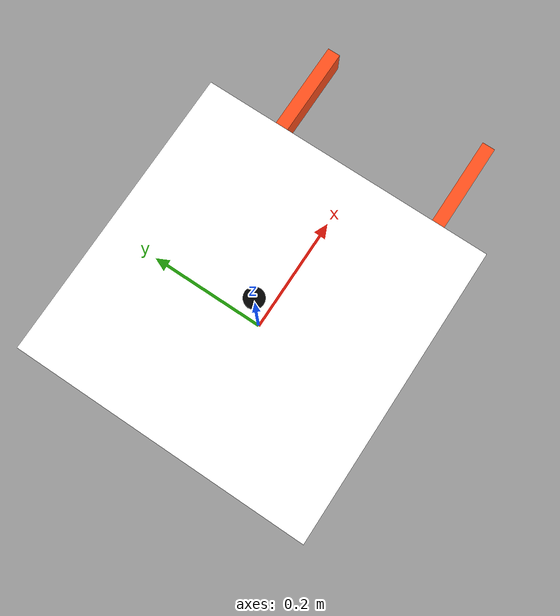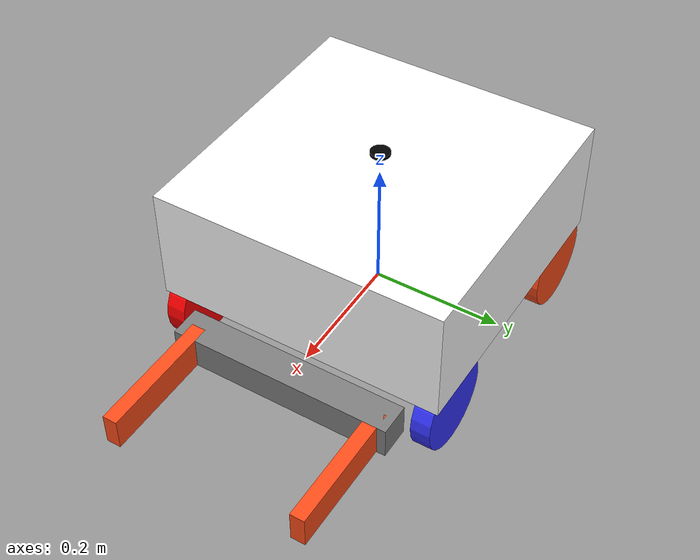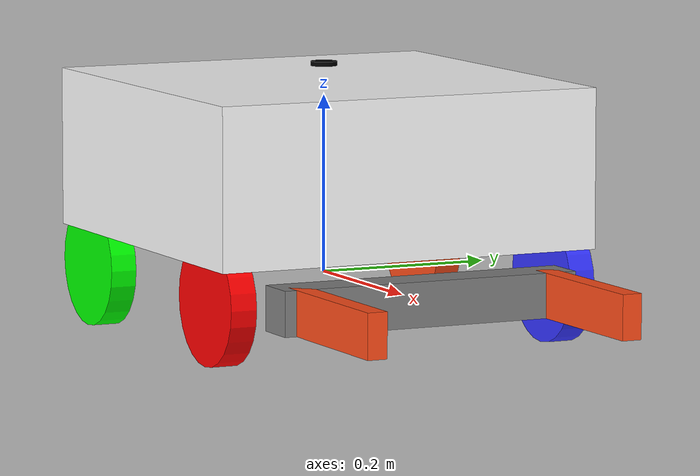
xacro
<?xml version="1.0"?>
<robot xmlns:xacro="http://www.ros.org/wiki/xacro"  name="robot">

    <xacro:include filename="inertial_macros.xacro" />
    <xacro:include filename="robot_core.xacro" />
    <xacro:include filename="gazebo_control.xacro" />
    <xacro:include filename="lidar.xacro" />
    <xacro:include filename="gripper.xacro" />
    <xacro:include filename="gripper_tranmission.xacro" />
    <xacro:include filename="gazebo_plugin.xacro"/>

    <xacro:robot_controller/>
    <ros2_control name="gripper_robot_gazebo_system" type="system">
        <hardware>
            <plugin>gazebo_ros2_control/GazeboSystem</plugin>
        </hardware>
        <xacro:gripper_vertical_tranmission/>
        <xacro:gripper_finger_left_tranmission/>
        <xacro:gripper_finger_right_tranmission/>
    </ros2_control>
</robot>

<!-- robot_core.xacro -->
<robot xmlns:xacro="http://www.ros.org/wiki/xacro" >

    <material name="white">
        <color rgba="1 1 1 1" />
    </material>

    <material name="orange">
        <color rgba="1 0.3 0.1 1"/>
    </material>

    <material name="blue">
        <color rgba="0.2 0.2 1 1"/>
    </material>

    <material name="black">
        <color rgba="0 0 0 1"/>
    </material>

    <material name="red">
        <color rgba="1 0 0 1"/>
    </material>

    <material name="green">
        <color rgba="0 1 0 1" />
    </material>

    <material name="gray">
        <color rgba="0.5 0.5 0.5 1" />
    </material>

    <material name="pink">
        <color rgba="1 0.4 0.7 1" />
    </material>

    <!-- BASE LINK -->

    <link name="base_link">
    </link>

    <!-- BASE_FOOTPRINT LINK -->
    <joint name="base_footprint_joint" type="fixed">
        <parent link="base_link"/>
        <child link="base_footprint"/>
        <origin xyz="0 0 0" rpy="0 0 0"/>
    </joint>

    <link name="base_footprint">
    </link>

    <joint name="chassis_joint" type="fixed">
        <parent link="base_link"/>
        <child link="chassis"/>
        <origin xyz="0 0 0"/>
    </joint>

    <!-- Chassis Link -->
    <link name="chassis">
        <visual>
            <origin xyz="0 0 0.13" rpy="0 0 0"/>
            <geometry>
                <box size="0.451 0.451 0.18"/>
                <!-- Hole geometry -->
                <cylinder length="0.15" radius="0.075"/>
            </geometry>
            <material name="white"/>
        </visual>
        <collision>
            <origin xyz="0 0 0.13" rpy="0 0 0"/>
            <geometry>
                <box size="0.451 0.451 0.18"/>
                <!-- Hole geometry -->
                <cylinder length="0.15" radius="0.075"/>
            </geometry>
        </collision>
        <xacro:inertial_box mass="200" x="0.451" y="0.451" z="0.18">
            <origin xyz="0 0 0.13" rpy="0 0 0"/>
        </xacro:inertial_box>
    </link>
    <gazebo reference="chassis">
        <material>Gazebo/White</material>
    </gazebo>

    <!-- Wheel Link -->
    <link name="front_left_wheel">
        <visual>
            <geometry>
                <cylinder length="0.03" radius="0.07" />
            </geometry>
            <material name="blue"/>
        </visual>
        <collision>
            <geometry>
                <cylinder length="0.03" radius="0.07" />
            </geometry>
        </collision>
        <xacro:inertial_cylinder mass="20" length="0.03" radius="0.07">
            <origin xyz="0 0 0" rpy="0 0 0"/>
        </xacro:inertial_cylinder>
    </link>
    <gazebo reference="front_left_wheel">
        <material>Gazebo/Blue</material>
    </gazebo>

    <link name="front_right_wheel">
        <visual>
            <geometry>
                <cylinder length="0.03" radius="0.07" />
            </geometry>
            <material name="red"/>
        </visual>
        <collision>
            <geometry>
                <cylinder length="0.03" radius="0.07" />
            </geometry>
        </collision>
        <xacro:inertial_cylinder mass="20" length="0.03" radius="0.07">
            <origin xyz="0 0 0" rpy="0 0 0"/>
        </xacro:inertial_cylinder>
    </link>
    <gazebo reference="front_right_wheel">
        <material>Gazebo/Red</material>
    </gazebo>

    <link name="back_left_wheel">
        <visual>
            <geometry>
                <cylinder length="0.03" radius="0.07" />
            </geometry>
            <material name="orange"/>
        </visual>
        <collision>
            <geometry>
                <cylinder length="0.03" radius="0.07" />
            </geometry>
        </collision>
        <xacro:inertial_cylinder mass="20" length="0.03" radius="0.07">
            <origin xyz="0 0 0" rpy="0 0 0"/>
        </xacro:inertial_cylinder>
    </link>
    <gazebo reference="back_left_wheel">
        <material>Gazebo/Orange</material>
    </gazebo>

    <link name="back_right_wheel">
        <visual>
            <geometry>
                <cylinder length="0.03" radius="0.07" />
            </geometry>
            <material name="green"/>
        </visual>
        <collision>
            <geometry>
                <cylinder length="0.03" radius="0.07" />
            </geometry>
        </collision>
        <xacro:inertial_cylinder mass="20" length="0.03" radius="0.07">
            <origin xyz="0 0 0" rpy="0 0 0"/>
        </xacro:inertial_cylinder>
    </link>
    <gazebo reference="back_right_wheel">
        <material>Gazebo/Green</material>
    </gazebo>

    <!-- Wheel Joint -->
    <!-- FRONT LEFT WHEEL -->
    <joint name="front_left_wheel_joint" type="continuous">
        <parent link="base_link"/>
        <child link="front_left_wheel"/>
        <origin xyz="0.165 0.205 0" rpy="-${pi/2} 0 0"/>
        <axis xyz="0 0 1"/>
    </joint>

    <!-- FRONT RIGHT WHEEL -->
    <joint name="front_right_wheel_joint" type="continuous">
        <parent link="base_link"/>
        <child link="front_right_wheel"/>
        <origin xyz="0.165 -0.205 0" rpy="${pi/2} 0 0"/>
        <axis xyz="0 0 -1"/>
    </joint>

    <!-- BACK LEFT WHEEL -->
    <joint name="back_left_wheel_joint" type="continuous">
        <parent link="base_link"/>
        <child link="back_left_wheel"/>
        <origin xyz="-0.165 0.205 0" rpy="-${pi/2} 0 0"/>
        <axis xyz="0 0 1"/>
    </joint>

    <!-- BACK RIGHT WHEEL -->
    <joint name="back_right_wheel_joint" type="continuous">
        <parent link="base_link"/>
        <child link="back_right_wheel"/>
        <origin xyz="-0.165 -0.205 0" rpy="${pi/2} 0 0"/>
        <axis xyz="0 0 -1"/>
    </joint>

</robot>

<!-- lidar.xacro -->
<robot xmlns:xacro="http://www.ros.org/wiki/xacro" >

    <joint name="laser_joint" type="fixed">
        <parent link="chassis"/>
        <child link="laser_frame"/>
        <origin xyz="0 0 0.236" rpy="0 0 0"/>
    </joint>

    <link name="laser_frame">
        <visual>
            <geometry>
                <cylinder radius="0.015" length="0.005"/>
            </geometry>
            <material name="black"/>
        </visual>
        <collision>
            <geometry>
                <cylinder radius="0.015" length="0.005"/>
            </geometry>
        </collision>
        <xacro:inertial_cylinder mass="0.1" length="0.1" radius="0.015">
            <origin xyz="0 0 0" rpy="0 0 0"/>
        </xacro:inertial_cylinder>
    </link>

    <gazebo reference="laser_frame">
        <material>Gazebo/Black</material>

        <sensor name="laser" type="ray">
            <pose> 0 0 0 0 0 0 </pose>
            <visualize>false</visualize>
            <update_rate>10</update_rate>
            <ray>
                <scan>
                    <horizontal>
                        <samples>1080</samples>
                        <min_angle>-3.14</min_angle>
                        <max_angle>3.14</max_angle>
                    </horizontal>
                </scan>
                <range>
                    <min>0.3</min>
                    <max>12</max>
                </range>
            </ray>

            <plugin name="laser_controller" filename="libgazebo_ros_ray_sensor.so">
                <ros>
                    <argument>~/out:=scan</argument>
                </ros>
                <output_type>sensor_msgs/LaserScan</output_type>
                <frame_name>laser_frame</frame_name>
            </plugin>
        </sensor>
    </gazebo>

</robot>

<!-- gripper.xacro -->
<robot xmlns:xacro="http://www.ros.org/wiki/xacro" >

    <!-- Gripper Base -->
    <link name="gripper_base">
        <visual>
            <origin xyz="0 0 0" rpy="0 0 0"/>
            <geometry>
                <box size="0.35 0.05 0.05"/>
            </geometry>
            <material name="gray"/>
        </visual>
        <collision>
            <origin xyz="0 0 0" rpy="0 0 0"/>
            <geometry>
                <box size="0.35 0.05 0.05"/>
            </geometry>
            <surface>
                <friction>
                    <ode>
                        <mu>2.0</mu>  <!-- Increase primary friction -->
                        <mu2>2.0</mu2>  <!-- Increase secondary friction -->
                    </ode>
                </friction>
                <contact>
                    <ode>
                        <restitution>0.0</restitution>  <!-- Lower the bounce factor -->
                        <soft_cfm>0.1</soft_cfm>  <!-- Soft constraint for smooth contact -->
                        <soft_erp>0.7</soft_erp>  <!-- Error reduction for smoother response -->
                        <kp>1000.0</kp>  <!-- Reduce excessive force -->
                        <kd>100.0</kd>  <!-- Damping to prevent sudden jumps -->
                        <max_vel>0.01</max_vel>
                    </ode>
                </contact>
            </surface>
        </collision>
        <xacro:inertial_box mass="0.5" x="0.35" y="0.05" z="0.05" >
            <origin xyz="0 0 0" rpy="0 0 0"/>
        </xacro:inertial_box>
    </link>

    <!-- Gripper Finger Left -->
    <link name="gripper_finger_left">
        <visual>
            <origin xyz="-0.075 -0.1 0" rpy="0 0 0"/>
            <geometry>
                <box size="0.0225 0.2 0.05"/>
            </geometry>
            <material name="orange"/>
        </visual>
        <collision>
            <origin xyz="-0.075 -0.1 0" rpy="0 0 0"/>
            <geometry>
                <box size="0.0225 0.2 0.1"/>
            </geometry>
            <surface>
                <friction>
                    <ode>
                        <mu>2.0</mu>  <!-- Increase primary friction -->
                        <mu2>2.0</mu2>  <!-- Increase secondary friction -->
                    </ode>
                </friction>
                <contact>
                    <ode>
                        <restitution>0.0</restitution>  <!-- Lower the bounce factor -->
                        <soft_cfm>0.1</soft_cfm>  <!-- Soft constraint for smooth contact -->
                        <soft_erp>0.7</soft_erp>  <!-- Error reduction for smoother response -->
                        <kp>1000.0</kp>  <!-- Reduce excessive force -->
                        <kd>100.0</kd>  <!-- Damping to prevent sudden jumps -->
                        <max_vel>0.01</max_vel>
                    </ode>
                </contact>
            </surface>
        </collision>
        <xacro:inertial_box mass="0.3" x="0.0225" y="0.2" z="0.05" >
            <origin xyz="-0.075 -0.1 0" rpy="0 0 0"/>
        </xacro:inertial_box>
    </link>

    <!-- Gripper Finger Right -->
    <link name="gripper_finger_right">
        <visual>
            <origin xyz="0.075 -0.10 0" rpy="0 0 0"/>
            <geometry>
                <box size="0.0225 0.2 0.05"/>
            </geometry>
            <material name="orange"/>
        </visual>
        <collision>
            <origin xyz="0.075 -0.10 0" rpy="0 0 0"/>
            <geometry>
                <box size="0.0225 0.2 0.1"/>
            </geometry>
            <surface>
                <friction>
                    <ode>
                        <mu>2.0</mu>  <!-- Increase primary friction -->
                        <mu2>2.0</mu2>  <!-- Increase secondary friction -->
                    </ode>
                </friction>
                <contact>
                    <ode>
                        <restitution>0.0</restitution>  <!-- Lower the bounce factor -->
                        <soft_cfm>0.1</soft_cfm>  <!-- Soft constraint for smooth contact -->
                        <soft_erp>0.7</soft_erp>  <!-- Error reduction for smoother response -->
                        <kp>1000.0</kp>  <!-- Reduce excessive force -->
                        <kd>100.0</kd>  <!-- Damping to prevent sudden jumps -->
                        <max_vel>0.01</max_vel>
                    </ode>
                </contact>
            </surface>
        </collision>
        <xacro:inertial_box mass="0.3" x="0.0225" y="0.2" z="0.05" >
            <origin xyz="0.075 -0.10 0" rpy="0 0 0"/>
        </xacro:inertial_box>
    </link>

    <!-- Vertical Movement Joint for Gripper -->
    <joint name="gripper_vertical_joint" type="prismatic">
        <parent link="chassis"/>
        <child link="gripper_base"/>
        <origin xyz="0.25 0 0" rpy="0 0 1.57"/>
        <axis xyz="0 0 1"/>
        <limit effort="80" lower="0" upper="0.13" velocity="0.1"/>
        <dynamics damping="50.0" friction="1.0"/>
    </joint>

    <!-- Gripper Finger Joints -->
    <joint name="gripper_finger_left_joint" type="prismatic">
        <parent link="gripper_base"/>
        <child link="gripper_finger_left"/>
        <origin xyz="-0.075 0 0" rpy="0 0 0"/>
        <axis xyz="1 0 0"/>
        <limit effort="100" lower="0" upper="0.1" velocity="0.1"/>
        <dynamics damping="20.0" friction="1.0"/>
    </joint>

    <joint name="gripper_finger_right_joint" type="prismatic">
        <parent link="gripper_base"/>
        <child link="gripper_finger_right"/>
        <origin xyz="0.075 0 0" rpy="0 0 0"/>
        <axis xyz="1 0 0"/>
        <limit effort="100" lower="-0.1" upper="0" velocity="0.1"/>
        <dynamics damping="20.0" friction="1.0"/>
    </joint>

    <!-- Gazebo Simulation for Gripper -->
    <gazebo reference="gripper_base">
        <material>Gazebo/Gray</material>
        <gravity>true</gravity>
        <ode>
            <solver_iterations>500</solver_iterations>  <!-- Increase solver iterations -->
            <solver_type>quick_nonlinear</solver_type>  <!-- Adjust solver for stability -->
        </ode>
    </gazebo>

    <gazebo reference="gripper_finger_left">
        <material>Gazebo/Orange</material>
        <gravity>true</gravity>
        <ode>
            <solver_iterations>500</solver_iterations>  <!-- Increase solver iterations -->
            <solver_type>quick_nonlinear</solver_type>  <!-- Adjust solver for stability -->
        </ode>
    </gazebo>

    <gazebo reference="gripper_finger_right">
        <material>Gazebo/Orange</material>
        <gravity>true</gravity>
        <ode>
            <solver_iterations>500</solver_iterations>  <!-- Increase solver iterations -->
            <solver_type>quick_nonlinear</solver_type>  <!-- Adjust solver for stability -->
        </ode>
    </gazebo>

</robot>
